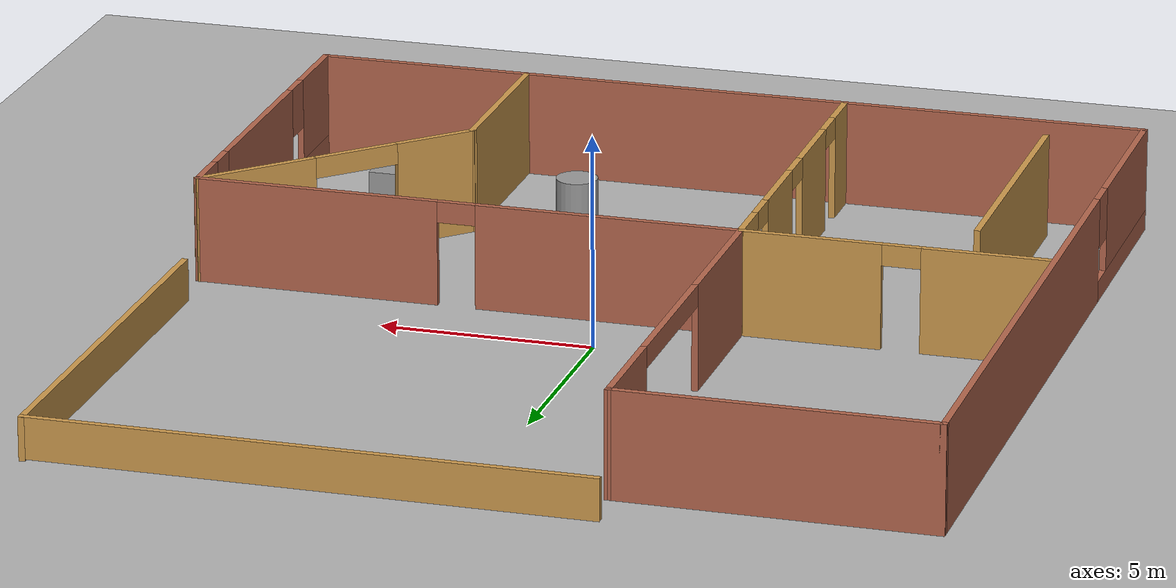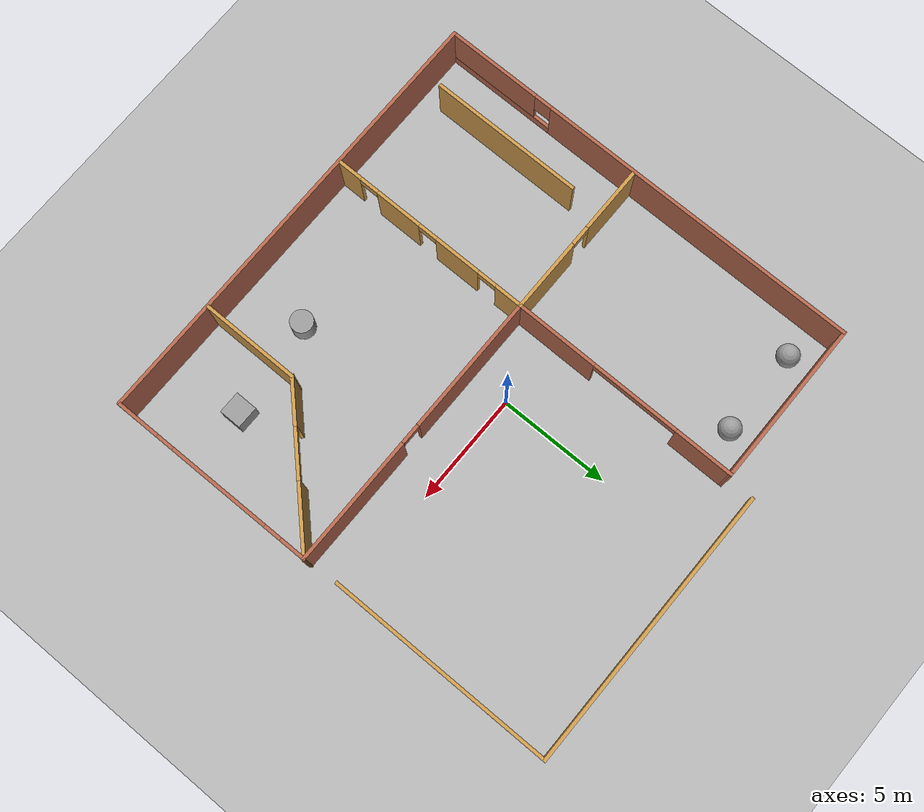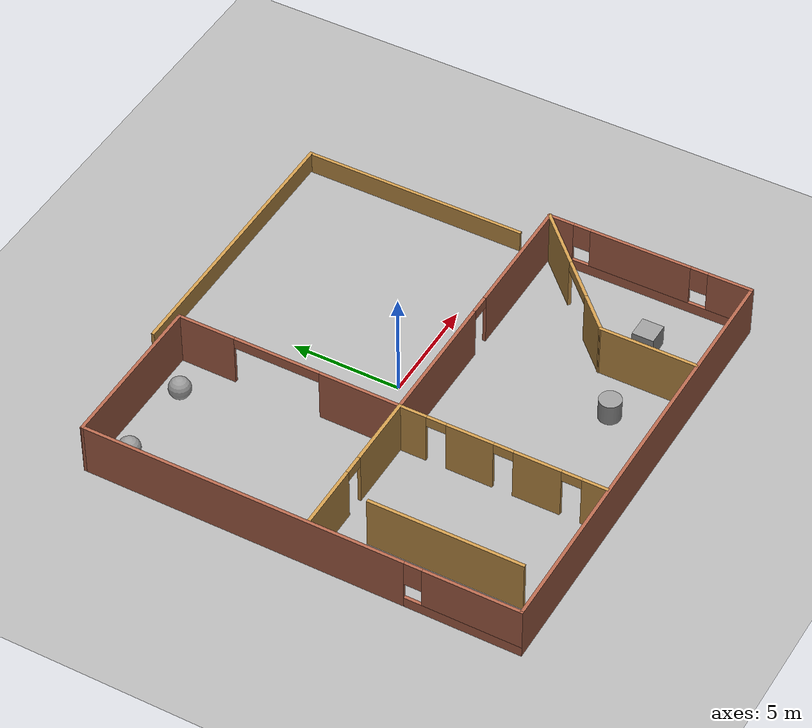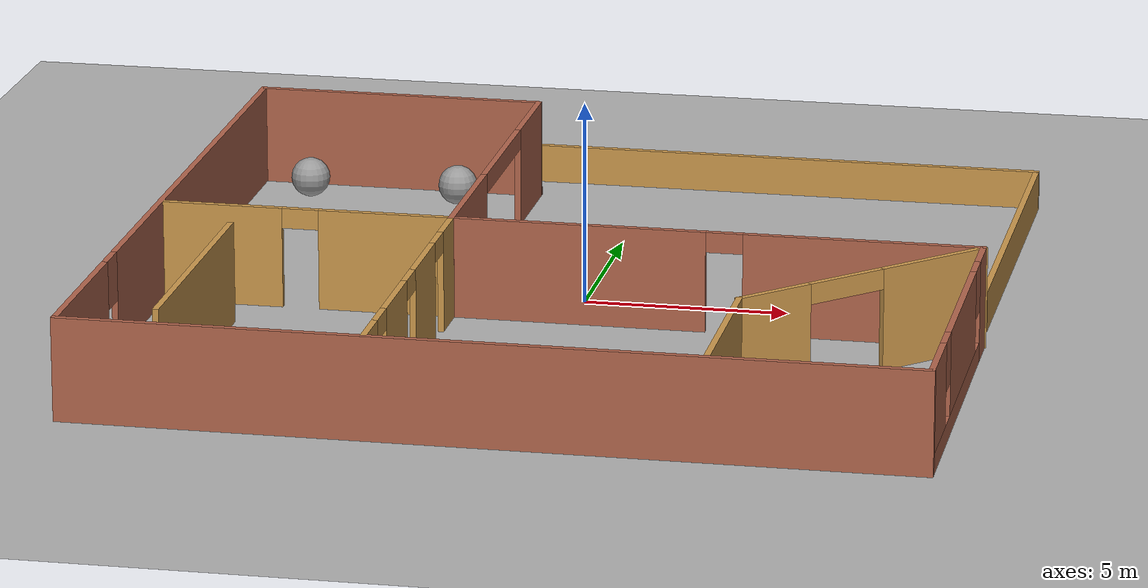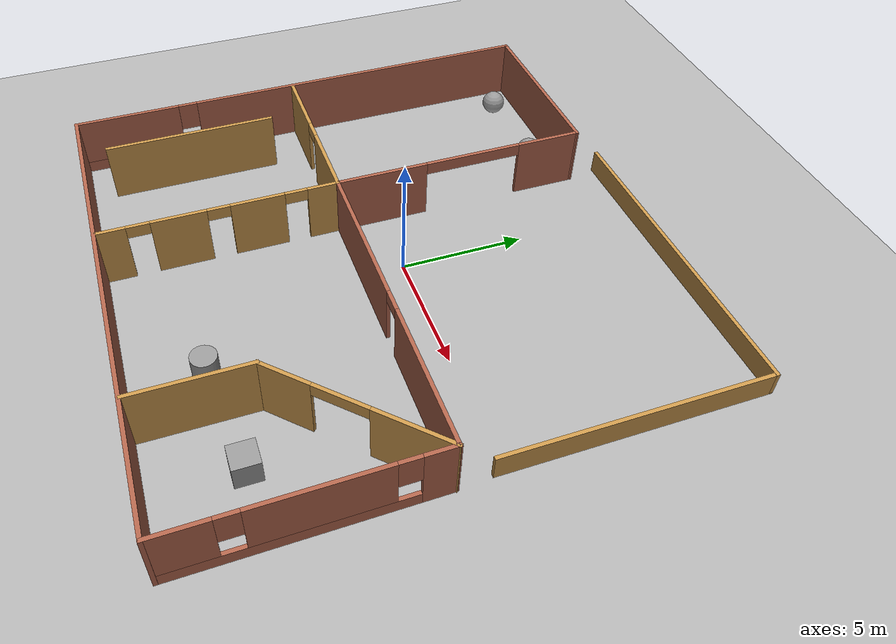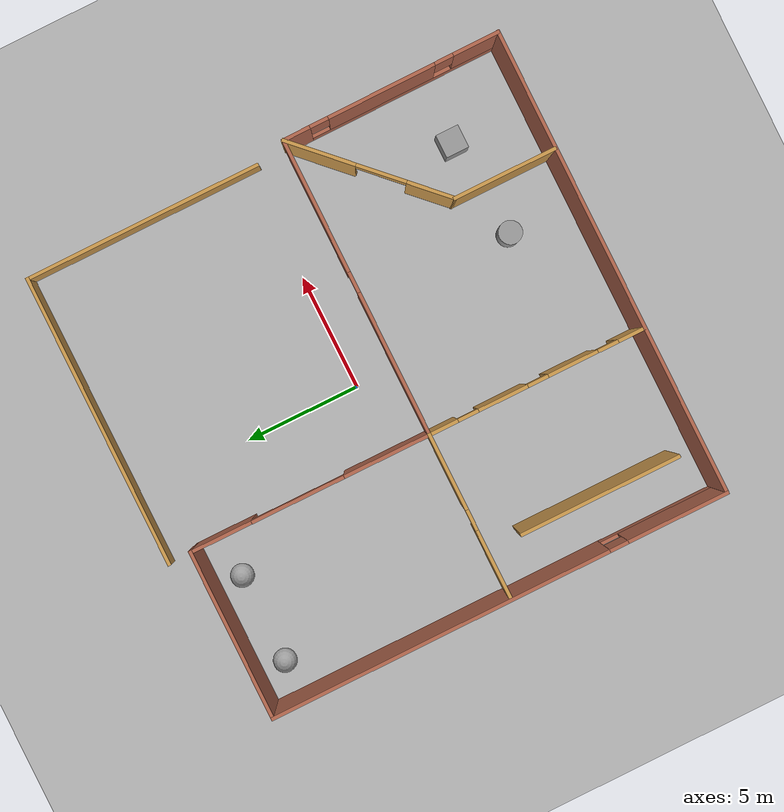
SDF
<sdf version='1.10'>
  <world name='default'>
    <light name='sun' type='directional'>
      <cast_shadows>1</cast_shadows>
      <pose>0 0 10 0 -0 0</pose>
      <diffuse>0.8 0.8 0.8 1</diffuse>
      <specular>0.2 0.2 0.2 1</specular>
      <attenuation>
        <range>1000</range>
        <constant>0.9</constant>
        <linear>0.01</linear>
        <quadratic>0.001</quadratic>
      </attenuation>
      <direction>-0.5 0.1 -0.9</direction>
      <spot>
        <inner_angle>0</inner_angle>
        <outer_angle>0</outer_angle>
        <falloff>0</falloff>
      </spot>
    </light>
    <model name='ground_plane'>
      <static>1</static>
      <link name='link'>
        <collision name='collision'>
          <geometry>
            <plane>
              <normal>0 0 1</normal>
              <size>100 100</size>
            </plane>
          </geometry>
          <surface>
            <friction>
              <ode>
                <mu>100</mu>
                <mu2>50</mu2>
              </ode>
              <torsional>
                <ode/>
              </torsional>
            </friction>
            <contact>
              <ode/>
            </contact>
            <bounce/>
          </surface>
          <max_contacts>10</max_contacts>
        </collision>
        <visual name='visual'>
          <cast_shadows>0</cast_shadows>
          <geometry>
            <plane>
              <normal>0 0 1</normal>
              <size>100 100</size>
            </plane>
          </geometry>
          <material>
            <ambient>0.4 0.4 0.4 1</ambient>
            <diffuse>0.7 0.7 0.7 1</diffuse>
            <specular>0.2 0.2 0.2 1</specular>
          </material>
        </visual>
        <self_collide>0</self_collide>
        <enable_wind>0</enable_wind>
        <kinematic>0</kinematic>
      </link>
    </model>
    <gravity>0 0 -9.8</gravity>
    <magnetic_field>6e-06 2.3e-05 -4.2e-05</magnetic_field>
    <atmosphere type='adiabatic'/>
    <physics name='1ms' type='ignored'>
      <max_step_size>0.001</max_step_size>
      <real_time_factor>1</real_time_factor>
    </physics>
    <plugin filename='gz-sim-physics-system' name='gz::sim::systems::Physics'/>
    <plugin filename='gz-sim-user-commands-system' name='gz::sim::systems::UserCommands'/>
    <plugin filename='gz-sim-scene-broadcaster-system' name='gz::sim::systems::SceneBroadcaster'/>
    <plugin filename='gz-sim-sensors-system' name='gz::sim::systems::Sensors'>
      <render_engine>ogre2</render_engine>
    </plugin>
    <plugin filename='gz-sim-imu-system' name='gz::sim::systems::Imu'/>
    <plugin filename='gz-sim-contact-system' name='gz::sim::systems::Contact'/>
    <scene>
      <ambient>0.4 0.4 0.4 1</ambient>
      <background>0.7 0.7 0.7 1</background>
      <shadows>1</shadows>
    </scene>
    <wind/>
    <spherical_coordinates>
      <surface_model>EARTH_WGS84</surface_model>
      <latitude_deg>0</latitude_deg>
      <longitude_deg>0</longitude_deg>
      <elevation>0</elevation>
      <heading_deg>0</heading_deg>
    </spherical_coordinates>
    <model name='test_room'>
      <pose>-0.077849 -1.23126 0 0 -0 0</pose>
      <link name='Wall_1'>
        <pose>-10.0852 -7e-06 0 0 -0 -1.5708</pose>
        <visual name='Wall_1_Visual_0'>
          <pose>-2.60084 0 1.25 0 -0 0</pose>
          <geometry>
            <box>
              <size>14.8266 0.15 2.5</size>
            </box>
          </geometry>
          <material>
            <ambient>0.35 0.2 0.15 1</ambient>
            <diffuse>0.7 0.4 0.3 1</diffuse>
            <specular>0.1 0.1 0.1 1</specular>
            <ambient>1 1 1 1</ambient>
          </material>
          <meta>
            <layer>0</layer>
          </meta>
        </visual>
        <collision name='Wall_1_Collision_0'>
          <geometry>
            <box>
              <size>14.8266 0.15 2.5</size>
            </box>
          </geometry>
          <pose>-2.60084 0 1.25 0 -0 0</pose>
          <max_contacts>10</max_contacts>
          <surface>
            <contact>
              <ode/>
            </contact>
            <bounce/>
            <friction>
              <torsional>
                <ode/>
              </torsional>
              <ode/>
            </friction>
          </surface>
        </collision>
        <visual name='Wall_1_Visual_1'>
          <pose>7.41331 0 0.25 0 -0 0</pose>
          <geometry>
            <box>
              <size>5.20167 0.15 0.5</size>
            </box>
          </geometry>
          <material>
            <ambient>0.35 0.2 0.15 1</ambient>
            <diffuse>0.7 0.4 0.3 1</diffuse>
            <specular>0.1 0.1 0.1 1</specular>
            <ambient>1 1 1 1</ambient>
          </material>
          <meta>
            <layer>0</layer>
          </meta>
        </visual>
        <collision name='Wall_1_Collision_1'>
          <geometry>
            <box>
              <size>5.20167 0.15 0.5</size>
            </box>
          </geometry>
          <pose>7.41331 0 0.25 0 -0 0</pose>
          <max_contacts>10</max_contacts>
          <surface>
            <contact>
              <ode/>
            </contact>
            <bounce/>
            <friction>
              <torsional>
                <ode/>
              </torsional>
              <ode/>
            </friction>
          </surface>
        </collision>
        <visual name='Wall_1_Visual_2'>
          <pose>7.81331 0 1.5 0 -0 0</pose>
          <geometry>
            <box>
              <size>4.40167 0.15 2</size>
            </box>
          </geometry>
          <material>
            <ambient>0.35 0.2 0.15 1</ambient>
            <diffuse>0.7 0.4 0.3 1</diffuse>
            <specular>0.1 0.1 0.1 1</specular>
            <ambient>1 1 1 1</ambient>
          </material>
          <meta>
            <layer>0</layer>
          </meta>
        </visual>
        <collision name='Wall_1_Collision_2'>
          <geometry>
            <box>
              <size>4.40167 0.15 2</size>
            </box>
          </geometry>
          <pose>7.81331 0 1.5 0 -0 0</pose>
          <max_contacts>10</max_contacts>
          <surface>
            <contact>
              <ode/>
            </contact>
            <bounce/>
            <friction>
              <torsional>
                <ode/>
              </torsional>
              <ode/>
            </friction>
          </surface>
        </collision>
        <visual name='Wall_1_Visual_3'>
          <pose>5.21248 0 1.9 0 -0 0</pose>
          <geometry>
            <box>
              <size>0.8 0.15 1.2</size>
            </box>
          </geometry>
          <material>
            <ambient>0.35 0.2 0.15 1</ambient>
            <diffuse>0.7 0.4 0.3 1</diffuse>
            <specular>0.1 0.1 0.1 1</specular>
            <ambient>1 1 1 1</ambient>
          </material>
          <meta>
            <layer>0</layer>
          </meta>
        </visual>
        <collision name='Wall_1_Collision_3'>
          <geometry>
            <box>
              <size>0.8 0.15 1.2</size>
            </box>
          </geometry>
          <pose>5.21248 0 1.9 0 -0 0</pose>
          <max_contacts>10</max_contacts>
          <surface>
            <contact>
              <ode/>
            </contact>
            <bounce/>
            <friction>
              <torsional>
                <ode/>
              </torsional>
              <ode/>
            </friction>
          </surface>
        </collision>
        <self_collide>0</self_collide>
        <enable_wind>0</enable_wind>
        <kinematic>0</kinematic>
      </link>
      <link name='Wall_10'>
        <pose>10.0526 -5.21899 0 0 -0 -1.56433</pose>
        <visual name='Wall_10_Visual_0'>
          <pose>-4.1681 0 1.25 0 -0 0</pose>
          <geometry>
            <box>
              <size>1.23337 0.15 2.5</size>
            </box>
          </geometry>
          <material>
            <ambient>0.35 0.2 0.15 1</ambient>
            <diffuse>0.7 0.4 0.3 1</diffuse>
            <specular>0.1 0.1 0.1 1</specular>
            <ambient>1 1 1 1</ambient>
          </material>
          <meta>
            <layer>0</layer>
          </meta>
        </visual>
        <collision name='Wall_10_Collision_0'>
          <geometry>
            <box>
              <size>1.23337 0.15 2.5</size>
            </box>
          </geometry>
          <pose>-4.1681 0 1.25 0 -0 0</pose>
          <max_contacts>10</max_contacts>
          <surface>
            <contact>
              <ode/>
            </contact>
            <bounce/>
            <friction>
              <torsional>
                <ode/>
              </torsional>
              <ode/>
            </friction>
          </surface>
        </collision>
        <visual name='Wall_10_Visual_1'>
          <pose>0.616686 0 0.25 0 -0 0</pose>
          <geometry>
            <box>
              <size>8.3362 0.15 0.5</size>
            </box>
          </geometry>
          <material>
            <ambient>0.35 0.2 0.15 1</ambient>
            <diffuse>0.7 0.4 0.3 1</diffuse>
            <specular>0.1 0.1 0.1 1</specular>
            <ambient>1 1 1 1</ambient>
          </material>
          <meta>
            <layer>0</layer>
          </meta>
        </visual>
        <collision name='Wall_10_Collision_1'>
          <geometry>
            <box>
              <size>8.3362 0.15 0.5</size>
            </box>
          </geometry>
          <pose>0.616686 0 0.25 0 -0 0</pose>
          <max_contacts>10</max_contacts>
          <surface>
            <contact>
              <ode/>
            </contact>
            <bounce/>
            <friction>
              <torsional>
                <ode/>
              </torsional>
              <ode/>
            </friction>
          </surface>
        </collision>
        <visual name='Wall_10_Visual_2'>
          <pose>-0.410197 0 1.5 0 -0 0</pose>
          <geometry>
            <box>
              <size>4.68244 0.15 2</size>
            </box>
          </geometry>
          <material>
            <ambient>0.35 0.2 0.15 1</ambient>
            <diffuse>0.7 0.4 0.3 1</diffuse>
            <specular>0.1 0.1 0.1 1</specular>
            <ambient>1 1 1 1</ambient>
          </material>
          <meta>
            <layer>0</layer>
          </meta>
        </visual>
        <collision name='Wall_10_Collision_2'>
          <geometry>
            <box>
              <size>4.68244 0.15 2</size>
            </box>
          </geometry>
          <pose>-0.410197 0 1.5 0 -0 0</pose>
          <max_contacts>10</max_contacts>
          <surface>
            <contact>
              <ode/>
            </contact>
            <bounce/>
            <friction>
              <torsional>
                <ode/>
              </torsional>
              <ode/>
            </friction>
          </surface>
        </collision>
        <visual name='Wall_10_Visual_3'>
          <pose>3.75791 0 1.5 0 -0 0</pose>
          <geometry>
            <box>
              <size>2.05376 0.15 2</size>
            </box>
          </geometry>
          <material>
            <ambient>0.35 0.2 0.15 1</ambient>
            <diffuse>0.7 0.4 0.3 1</diffuse>
            <specular>0.1 0.1 0.1 1</specular>
            <ambient>1 1 1 1</ambient>
          </material>
          <meta>
            <layer>0</layer>
          </meta>
        </visual>
        <collision name='Wall_10_Collision_3'>
          <geometry>
            <box>
              <size>2.05376 0.15 2</size>
            </box>
          </geometry>
          <pose>3.75791 0 1.5 0 -0 0</pose>
          <max_contacts>10</max_contacts>
          <surface>
            <contact>
              <ode/>
            </contact>
            <bounce/>
            <friction>
              <torsional>
                <ode/>
              </torsional>
              <ode/>
            </friction>
          </surface>
        </collision>
        <visual name='Wall_10_Visual_4'>
          <pose>-3.15142 0 1.9 0 -0 0</pose>
          <geometry>
            <box>
              <size>0.8 0.15 1.2</size>
            </box>
          </geometry>
          <material>
            <ambient>0.35 0.2 0.15 1</ambient>
            <diffuse>0.7 0.4 0.3 1</diffuse>
            <specular>0.1 0.1 0.1 1</specular>
            <ambient>1 1 1 1</ambient>
          </material>
          <meta>
            <layer>0</layer>
          </meta>
        </visual>
        <collision name='Wall_10_Collision_4'>
          <geometry>
            <box>
              <size>0.8 0.15 1.2</size>
            </box>
          </geometry>
          <pose>-3.15142 0 1.9 0 -0 0</pose>
          <max_contacts>10</max_contacts>
          <surface>
            <contact>
              <ode/>
            </contact>
            <bounce/>
            <friction>
              <torsional>
                <ode/>
              </torsional>
              <ode/>
            </friction>
          </surface>
        </collision>
        <visual name='Wall_10_Visual_5'>
          <pose>2.33102 0 1.9 0 -0 0</pose>
          <geometry>
            <box>
              <size>0.8 0.15 1.2</size>
            </box>
          </geometry>
          <material>
            <ambient>0.35 0.2 0.15 1</ambient>
            <diffuse>0.7 0.4 0.3 1</diffuse>
            <specular>0.1 0.1 0.1 1</specular>
            <ambient>1 1 1 1</ambient>
          </material>
          <meta>
            <layer>0</layer>
          </meta>
        </visual>
        <collision name='Wall_10_Collision_5'>
          <geometry>
            <box>
              <size>0.8 0.15 1.2</size>
            </box>
          </geometry>
          <pose>2.33102 0 1.9 0 -0 0</pose>
          <max_contacts>10</max_contacts>
          <surface>
            <contact>
              <ode/>
            </contact>
            <bounce/>
            <friction>
              <torsional>
                <ode/>
              </torsional>
              <ode/>
            </friction>
          </surface>
        </collision>
        <self_collide>0</self_collide>
        <enable_wind>0</enable_wind>
        <kinematic>0</kinematic>
      </link>
      <link name='Wall_12'>
        <collision name='Wall_12_Collision'>
          <geometry>
            <box>
              <size>7.41264 0.15 2.5</size>
            </box>
          </geometry>
          <pose>0 0 1.25 0 -0 0</pose>
          <max_contacts>10</max_contacts>
          <surface>
            <contact>
              <ode/>
            </contact>
            <bounce/>
            <friction>
              <torsional>
                <ode/>
              </torsional>
              <ode/>
            </friction>
          </surface>
        </collision>
        <visual name='Wall_12_Visual'>
          <pose>0 0 1.25 0 -0 0</pose>
          <geometry>
            <box>
              <size>7.41264 0.15 2.5</size>
            </box>
          </geometry>
          <material>
            <ambient>0.35 0.2 0.15 1</ambient>
            <diffuse>0.7 0.4 0.3 1</diffuse>
            <specular>0.1 0.1 0.1 1</specular>
            <ambient>1 1 1 1</ambient>
          </material>
          <meta>
            <layer>0</layer>
          </meta>
        </visual>
        <pose>-6.45385 9.93841 0 0 -0 -0.000203</pose>
        <self_collide>0</self_collide>
        <enable_wind>0</enable_wind>
        <kinematic>0</kinematic>
      </link>
      <link name='Wall_16'>
        <pose>-6.41315 -0.507168 0 0 -0 3.14159</pose>
        <visual name='Wall_16_Visual_0'>
          <pose>-1.94676 0 1.25 0 -0 0</pose>
          <geometry>
            <box>
              <size>3.35648 0.15 2.5</size>
            </box>
          </geometry>
          <material>
            <ambient>0.4 0.3 0.15 1</ambient>
            <diffuse>0.8 0.6 0.3 1</diffuse>
            <specular>0.1 0.1 0.1 1</specular>
            <ambient>1 1 1 1</ambient>
          </material>
          <meta>
            <layer>0</layer>
          </meta>
        </visual>
        <collision name='Wall_16_Collision_0'>
          <geometry>
            <box>
              <size>3.35648 0.15 2.5</size>
            </box>
          </geometry>
          <pose>-1.94676 0 1.25 0 -0 0</pose>
          <max_contacts>10</max_contacts>
          <surface>
            <contact>
              <ode/>
            </contact>
            <bounce/>
            <friction>
              <torsional>
                <ode/>
              </torsional>
              <ode/>
            </friction>
          </surface>
        </collision>
        <visual name='Wall_16_Visual_1'>
          <pose>2.12824 0 1.25 0 -0 0</pose>
          <geometry>
            <box>
              <size>2.99352 0.15 2.5</size>
            </box>
          </geometry>
          <material>
            <ambient>0.4 0.3 0.15 1</ambient>
            <diffuse>0.8 0.6 0.3 1</diffuse>
            <specular>0.1 0.1 0.1 1</specular>
            <ambient>1 1 1 1</ambient>
          </material>
          <meta>
            <layer>0</layer>
          </meta>
        </visual>
        <collision name='Wall_16_Collision_1'>
          <geometry>
            <box>
              <size>2.99352 0.15 2.5</size>
            </box>
          </geometry>
          <pose>2.12824 0 1.25 0 -0 0</pose>
          <max_contacts>10</max_contacts>
          <surface>
            <contact>
              <ode/>
            </contact>
            <bounce/>
            <friction>
              <torsional>
                <ode/>
              </torsional>
              <ode/>
            </friction>
          </surface>
        </collision>
        <visual name='Wall_16_Visual_2'>
          <pose>0.181481 0 2.25 0 -0 0</pose>
          <geometry>
            <box>
              <size>0.9 0.15 0.5</size>
            </box>
          </geometry>
          <material>
            <ambient>0.4 0.3 0.15 1</ambient>
            <diffuse>0.8 0.6 0.3 1</diffuse>
            <specular>0.1 0.1 0.1 1</specular>
            <ambient>1 1 1 1</ambient>
          </material>
          <meta>
            <layer>0</layer>
          </meta>
        </visual>
        <collision name='Wall_16_Collision_2'>
          <geometry>
            <box>
              <size>0.9 0.15 0.5</size>
            </box>
          </geometry>
          <pose>0.181481 0 2.25 0 -0 0</pose>
          <max_contacts>10</max_contacts>
          <surface>
            <contact>
              <ode/>
            </contact>
            <bounce/>
            <friction>
              <torsional>
                <ode/>
              </torsional>
              <ode/>
            </friction>
          </surface>
        </collision>
        <self_collide>0</self_collide>
        <enable_wind>0</enable_wind>
        <kinematic>0</kinematic>
      </link>
      <link name='Wall_18'>
        <pose>-2.86315 -5.18217 0 0 -0 -1.5708</pose>
        <visual name='Wall_18_Visual_0'>
          <pose>-4.08833 0 1.25 0 -0 0</pose>
          <geometry>
            <box>
              <size>1.32334 0.15 2.5</size>
            </box>
          </geometry>
          <material>
            <ambient>0.4 0.3 0.15 1</ambient>
            <diffuse>0.8 0.6 0.3 1</diffuse>
            <specular>0.1 0.1 0.1 1</specular>
            <ambient>1 1 1 1</ambient>
          </material>
          <meta>
            <layer>0</layer>
          </meta>
        </visual>
        <collision name='Wall_18_Collision_0'>
          <geometry>
            <box>
              <size>1.32334 0.15 2.5</size>
            </box>
          </geometry>
          <pose>-4.08833 0 1.25 0 -0 0</pose>
          <max_contacts>10</max_contacts>
          <surface>
            <contact>
              <ode/>
            </contact>
            <bounce/>
            <friction>
              <torsional>
                <ode/>
              </torsional>
              <ode/>
            </friction>
          </surface>
        </collision>
        <visual name='Wall_18_Visual_1'>
          <pose>-1.45004 0 1.25 0 -0 0</pose>
          <geometry>
            <box>
              <size>2.15324 0.15 2.5</size>
            </box>
          </geometry>
          <material>
            <ambient>0.4 0.3 0.15 1</ambient>
            <diffuse>0.8 0.6 0.3 1</diffuse>
            <specular>0.1 0.1 0.1 1</specular>
            <ambient>1 1 1 1</ambient>
          </material>
          <meta>
            <layer>0</layer>
          </meta>
        </visual>
        <collision name='Wall_18_Collision_1'>
          <geometry>
            <box>
              <size>2.15324 0.15 2.5</size>
            </box>
          </geometry>
          <pose>-1.45004 0 1.25 0 -0 0</pose>
          <max_contacts>10</max_contacts>
          <surface>
            <contact>
              <ode/>
            </contact>
            <bounce/>
            <friction>
              <torsional>
                <ode/>
              </torsional>
              <ode/>
            </friction>
          </surface>
        </collision>
        <visual name='Wall_18_Visual_2'>
          <pose>1.60632 0 1.25 0 -0 0</pose>
          <geometry>
            <box>
              <size>2.15948 0.15 2.5</size>
            </box>
          </geometry>
          <material>
            <ambient>0.4 0.3 0.15 1</ambient>
            <diffuse>0.8 0.6 0.3 1</diffuse>
            <specular>0.1 0.1 0.1 1</specular>
            <ambient>1 1 1 1</ambient>
          </material>
          <meta>
            <layer>0</layer>
          </meta>
        </visual>
        <collision name='Wall_18_Collision_2'>
          <geometry>
            <box>
              <size>2.15948 0.15 2.5</size>
            </box>
          </geometry>
          <pose>1.60632 0 1.25 0 -0 0</pose>
          <max_contacts>10</max_contacts>
          <surface>
            <contact>
              <ode/>
            </contact>
            <bounce/>
            <friction>
              <torsional>
                <ode/>
              </torsional>
              <ode/>
            </friction>
          </surface>
        </collision>
        <visual name='Wall_18_Visual_3'>
          <pose>4.16803 0 1.25 0 -0 0</pose>
          <geometry>
            <box>
              <size>1.16395 0.15 2.5</size>
            </box>
          </geometry>
          <material>
            <ambient>0.4 0.3 0.15 1</ambient>
            <diffuse>0.8 0.6 0.3 1</diffuse>
            <specular>0.1 0.1 0.1 1</specular>
            <ambient>1 1 1 1</ambient>
          </material>
          <meta>
            <layer>0</layer>
          </meta>
        </visual>
        <collision name='Wall_18_Collision_3'>
          <geometry>
            <box>
              <size>1.16395 0.15 2.5</size>
            </box>
          </geometry>
          <pose>4.16803 0 1.25 0 -0 0</pose>
          <max_contacts>10</max_contacts>
          <surface>
            <contact>
              <ode/>
            </contact>
            <bounce/>
            <friction>
              <torsional>
                <ode/>
              </torsional>
              <ode/>
            </friction>
          </surface>
        </collision>
        <visual name='Wall_18_Visual_4'>
          <pose>-2.97666 0 2.25 0 -0 0</pose>
          <geometry>
            <box>
              <size>0.9 0.15 0.5</size>
            </box>
          </geometry>
          <material>
            <ambient>0.4 0.3 0.15 1</ambient>
            <diffuse>0.8 0.6 0.3 1</diffuse>
            <specular>0.1 0.1 0.1 1</specular>
            <ambient>1 1 1 1</ambient>
          </material>
          <meta>
            <layer>0</layer>
          </meta>
        </visual>
        <collision name='Wall_18_Collision_4'>
          <geometry>
            <box>
              <size>0.9 0.15 0.5</size>
            </box>
          </geometry>
          <pose>-2.97666 0 2.25 0 -0 0</pose>
          <max_contacts>10</max_contacts>
          <surface>
            <contact>
              <ode/>
            </contact>
            <bounce/>
            <friction>
              <torsional>
                <ode/>
              </torsional>
              <ode/>
            </friction>
          </surface>
        </collision>
        <visual name='Wall_18_Visual_5'>
          <pose>0.076577 0 2.25 0 -0 0</pose>
          <geometry>
            <box>
              <size>0.9 0.15 0.5</size>
            </box>
          </geometry>
          <material>
            <ambient>0.4 0.3 0.15 1</ambient>
            <diffuse>0.8 0.6 0.3 1</diffuse>
            <specular>0.1 0.1 0.1 1</specular>
            <ambient>1 1 1 1</ambient>
          </material>
          <meta>
            <layer>0</layer>
          </meta>
        </visual>
        <collision name='Wall_18_Collision_5'>
          <geometry>
            <box>
              <size>0.9 0.15 0.5</size>
            </box>
          </geometry>
          <pose>0.076577 0 2.25 0 -0 0</pose>
          <max_contacts>10</max_contacts>
          <surface>
            <contact>
              <ode/>
            </contact>
            <bounce/>
            <friction>
              <torsional>
                <ode/>
              </torsional>
              <ode/>
            </friction>
          </surface>
        </collision>
        <visual name='Wall_18_Visual_6'>
          <pose>3.13605 0 2.25 0 -0 0</pose>
          <geometry>
            <box>
              <size>0.9 0.15 0.5</size>
            </box>
          </geometry>
          <material>
            <ambient>0.4 0.3 0.15 1</ambient>
            <diffuse>0.8 0.6 0.3 1</diffuse>
            <specular>0.1 0.1 0.1 1</specular>
            <ambient>1 1 1 1</ambient>
          </material>
          <meta>
            <layer>0</layer>
          </meta>
        </visual>
        <collision name='Wall_18_Collision_6'>
          <geometry>
            <box>
              <size>0.9 0.15 0.5</size>
            </box>
          </geometry>
          <pose>3.13605 0 2.25 0 -0 0</pose>
          <max_contacts>10</max_contacts>
          <surface>
            <contact>
              <ode/>
            </contact>
            <bounce/>
            <friction>
              <torsional>
                <ode/>
              </torsional>
              <ode/>
            </friction>
          </surface>
        </collision>
        <self_collide>0</self_collide>
        <enable_wind>0</enable_wind>
        <kinematic>0</kinematic>
      </link>
      <link name='Wall_20'>
        <collision name='Wall_20_Collision'>
          <geometry>
            <box>
              <size>7 0.15 2.5</size>
            </box>
          </geometry>
          <pose>0 0 1.25 0 -0 0</pose>
          <max_contacts>10</max_contacts>
          <surface>
            <contact>
              <ode/>
            </contact>
            <bounce/>
            <friction>
              <torsional>
                <ode/>
              </torsional>
              <ode/>
            </friction>
          </surface>
        </collision>
        <visual name='Wall_20_Visual'>
          <pose>0 0 1.25 0 -0 0</pose>
          <geometry>
            <box>
              <size>7 0.15 2.5</size>
            </box>
          </geometry>
          <material>
            <ambient>0.4 0.3 0.15 1</ambient>
            <diffuse>0.8 0.6 0.3 1</diffuse>
            <specular>0.1 0.1 0.1 1</specular>
            <ambient>1 1 1 1</ambient>
          </material>
          <meta>
            <layer>0</layer>
          </meta>
        </visual>
        <pose>-7.96917 -5.44423 0 0 -0 -1.5708</pose>
        <self_collide>0</self_collide>
        <enable_wind>0</enable_wind>
        <kinematic>0</kinematic>
      </link>
      <link name='Wall_22'>
        <pose>7.51188 -3.01953 0 0 -0 -2.35619</pose>
        <visual name='Wall_22_Visual_0'>
          <pose>-2.09265 0 1.25 0 -0 0</pose>
          <geometry>
            <box>
              <size>3.06471 0.15 2.5</size>
            </box>
          </geometry>
          <material>
            <ambient>0.4 0.3 0.15 1</ambient>
            <diffuse>0.8 0.6 0.3 1</diffuse>
            <specular>0.1 0.1 0.1 1</specular>
            <ambient>1 1 1 1</ambient>
          </material>
          <meta>
            <layer>0</layer>
          </meta>
        </visual>
        <collision name='Wall_22_Collision_0'>
          <geometry>
            <box>
              <size>3.06471 0.15 2.5</size>
            </box>
          </geometry>
          <pose>-2.09265 0 1.25 0 -0 0</pose>
          <max_contacts>10</max_contacts>
          <surface>
            <contact>
              <ode/>
            </contact>
            <bounce/>
            <friction>
              <torsional>
                <ode/>
              </torsional>
              <ode/>
            </friction>
          </surface>
        </collision>
        <visual name='Wall_22_Visual_1'>
          <pose>2.58752 0 1.25 0 -0 0</pose>
          <geometry>
            <box>
              <size>2.07496 0.15 2.5</size>
            </box>
          </geometry>
          <material>
            <ambient>0.4 0.3 0.15 1</ambient>
            <diffuse>0.8 0.6 0.3 1</diffuse>
            <specular>0.1 0.1 0.1 1</specular>
            <ambient>1 1 1 1</ambient>
          </material>
          <meta>
            <layer>0</layer>
          </meta>
        </visual>
        <collision name='Wall_22_Collision_1'>
          <geometry>
            <box>
              <size>2.07496 0.15 2.5</size>
            </box>
          </geometry>
          <pose>2.58752 0 1.25 0 -0 0</pose>
          <max_contacts>10</max_contacts>
          <surface>
            <contact>
              <ode/>
            </contact>
            <bounce/>
            <friction>
              <torsional>
                <ode/>
              </torsional>
              <ode/>
            </friction>
          </surface>
        </collision>
        <visual name='Wall_22_Visual_2'>
          <pose>0.494874 0 2.25 0 -0 0</pose>
          <geometry>
            <box>
              <size>2.11033 0.15 0.5</size>
            </box>
          </geometry>
          <material>
            <ambient>0.4 0.3 0.15 1</ambient>
            <diffuse>0.8 0.6 0.3 1</diffuse>
            <specular>0.1 0.1 0.1 1</specular>
            <ambient>1 1 1 1</ambient>
          </material>
          <meta>
            <layer>0</layer>
          </meta>
        </visual>
        <collision name='Wall_22_Collision_2'>
          <geometry>
            <box>
              <size>2.11033 0.15 0.5</size>
            </box>
          </geometry>
          <pose>0.494874 0 2.25 0 -0 0</pose>
          <max_contacts>10</max_contacts>
          <surface>
            <contact>
              <ode/>
            </contact>
            <bounce/>
            <friction>
              <torsional>
                <ode/>
              </torsional>
              <ode/>
            </friction>
          </surface>
        </collision>
        <self_collide>0</self_collide>
        <enable_wind>0</enable_wind>
        <kinematic>0</kinematic>
      </link>
      <link name='Wall_23'>
        <collision name='Wall_23_Collision'>
          <geometry>
            <box>
              <size>4.5 0.15 2.5</size>
            </box>
          </geometry>
          <pose>0 0 1.25 0 -0 0</pose>
          <max_contacts>10</max_contacts>
          <surface>
            <contact>
              <ode/>
            </contact>
            <bounce/>
            <friction>
              <torsional>
                <ode/>
              </torsional>
              <ode/>
            </friction>
          </surface>
        </collision>
        <visual name='Wall_23_Visual'>
          <pose>0 0 1.25 0 -0 0</pose>
          <geometry>
            <box>
              <size>4.5 0.15 2.5</size>
            </box>
          </geometry>
          <material>
            <ambient>0.4 0.3 0.15 1</ambient>
            <diffuse>0.8 0.6 0.3 1</diffuse>
            <specular>0.1 0.1 0.1 1</specular>
            <ambient>1 1 1 1</ambient>
          </material>
          <meta>
            <layer>0</layer>
          </meta>
        </visual>
        <pose>5.00165 -7.70476 0 0 -0 -1.5708</pose>
        <self_collide>0</self_collide>
        <enable_wind>0</enable_wind>
        <kinematic>0</kinematic>
      </link>
      <link name='Wall_3'>
        <collision name='Wall_3_Collision'>
          <geometry>
            <box>
              <size>20.3204 0.15 2.5</size>
            </box>
          </geometry>
          <pose>0 0 1.25 0 -0 0</pose>
          <max_contacts>10</max_contacts>
          <surface>
            <contact>
              <ode/>
            </contact>
            <bounce/>
            <friction>
              <torsional>
                <ode/>
              </torsional>
              <ode/>
            </friction>
          </surface>
        </collision>
        <visual name='Wall_3_Visual'>
          <pose>0 0 1.25 0 -0 0</pose>
          <geometry>
            <box>
              <size>20.3204 0.15 2.5</size>
            </box>
          </geometry>
          <material>
            <ambient>0.35 0.2 0.15 1</ambient>
            <diffuse>0.7 0.4 0.3 1</diffuse>
            <specular>0.1 0.1 0.1 1</specular>
            <ambient>1 1 1 1</ambient>
          </material>
          <meta>
            <layer>0</layer>
          </meta>
        </visual>
        <pose>8e-06 -9.93916 0 0 -0 0</pose>
        <self_collide>0</self_collide>
        <enable_wind>0</enable_wind>
        <kinematic>0</kinematic>
      </link>
      <link name='Wall_7'>
        <pose>-2.84231 4.71525 0 0 -0 -1.57458</pose>
        <visual name='Wall_7_Visual_0'>
          <pose>-3.92845 0 1.25 0 -0 0</pose>
          <geometry>
            <box>
              <size>2.73806 0.15 2.5</size>
            </box>
          </geometry>
          <material>
            <ambient>0.35 0.2 0.15 1</ambient>
            <diffuse>0.7 0.4 0.3 1</diffuse>
            <specular>0.1 0.1 0.1 1</specular>
            <ambient>1 1 1 1</ambient>
          </material>
          <meta>
            <layer>0</layer>
          </meta>
        </visual>
        <collision name='Wall_7_Collision_0'>
          <geometry>
            <box>
              <size>2.73806 0.15 2.5</size>
            </box>
          </geometry>
          <pose>-3.92845 0 1.25 0 -0 0</pose>
          <max_contacts>10</max_contacts>
          <surface>
            <contact>
              <ode/>
            </contact>
            <bounce/>
            <friction>
              <torsional>
                <ode/>
              </torsional>
              <ode/>
            </friction>
          </surface>
        </collision>
        <visual name='Wall_7_Visual_1'>
          <pose>3.38844 0 1.25 0 -0 0</pose>
          <geometry>
            <box>
              <size>3.81807 0.15 2.5</size>
            </box>
          </geometry>
          <material>
            <ambient>0.35 0.2 0.15 1</ambient>
            <diffuse>0.7 0.4 0.3 1</diffuse>
            <specular>0.1 0.1 0.1 1</specular>
            <ambient>1 1 1 1</ambient>
          </material>
          <meta>
            <layer>0</layer>
          </meta>
        </visual>
        <collision name='Wall_7_Collision_1'>
          <geometry>
            <box>
              <size>3.81807 0.15 2.5</size>
            </box>
          </geometry>
          <pose>3.38844 0 1.25 0 -0 0</pose>
          <max_contacts>10</max_contacts>
          <surface>
            <contact>
              <ode/>
            </contact>
            <bounce/>
            <friction>
              <torsional>
                <ode/>
              </torsional>
              <ode/>
            </friction>
          </surface>
        </collision>
        <visual name='Wall_7_Visual_2'>
          <pose>-0.540004 0 2.25 0 -0 0</pose>
          <geometry>
            <box>
              <size>4.03882 0.15 0.5</size>
            </box>
          </geometry>
          <material>
            <ambient>0.35 0.2 0.15 1</ambient>
            <diffuse>0.7 0.4 0.3 1</diffuse>
            <specular>0.1 0.1 0.1 1</specular>
            <ambient>1 1 1 1</ambient>
          </material>
          <meta>
            <layer>0</layer>
          </meta>
        </visual>
        <collision name='Wall_7_Collision_2'>
          <geometry>
            <box>
              <size>4.03882 0.15 0.5</size>
            </box>
          </geometry>
          <pose>-0.540004 0 2.25 0 -0 0</pose>
          <max_contacts>10</max_contacts>
          <surface>
            <contact>
              <ode/>
            </contact>
            <bounce/>
            <friction>
              <torsional>
                <ode/>
              </torsional>
              <ode/>
            </friction>
          </surface>
        </collision>
        <self_collide>0</self_collide>
        <enable_wind>0</enable_wind>
        <kinematic>0</kinematic>
      </link>
      <link name='Wall_8'>
        <pose>3.58001 -0.508237 0 0 -0 -0.000166</pose>
        <visual name='Wall_8_Visual_0'>
          <pose>-3.36964 0 1.25 0 -0 0</pose>
          <geometry>
            <box>
              <size>6.29492 0.15 2.5</size>
            </box>
          </geometry>
          <material>
            <ambient>0.35 0.2 0.15 1</ambient>
            <diffuse>0.7 0.4 0.3 1</diffuse>
            <specular>0.1 0.1 0.1 1</specular>
            <ambient>1 1 1 1</ambient>
          </material>
          <meta>
            <layer>0</layer>
          </meta>
        </visual>
        <collision name='Wall_8_Collision_0'>
          <geometry>
            <box>
              <size>6.29492 0.15 2.5</size>
            </box>
          </geometry>
          <pose>-3.36964 0 1.25 0 -0 0</pose>
          <max_contacts>10</max_contacts>
          <surface>
            <contact>
              <ode/>
            </contact>
            <bounce/>
            <friction>
              <torsional>
                <ode/>
              </torsional>
              <ode/>
            </friction>
          </surface>
        </collision>
        <visual name='Wall_8_Visual_1'>
          <pose>3.59746 0 1.25 0 -0 0</pose>
          <geometry>
            <box>
              <size>5.83927 0.15 2.5</size>
            </box>
          </geometry>
          <material>
            <ambient>0.35 0.2 0.15 1</ambient>
            <diffuse>0.7 0.4 0.3 1</diffuse>
            <specular>0.1 0.1 0.1 1</specular>
            <ambient>1 1 1 1</ambient>
          </material>
          <meta>
            <layer>0</layer>
          </meta>
        </visual>
        <collision name='Wall_8_Collision_1'>
          <geometry>
            <box>
              <size>5.83927 0.15 2.5</size>
            </box>
          </geometry>
          <pose>3.59746 0 1.25 0 -0 0</pose>
          <max_contacts>10</max_contacts>
          <surface>
            <contact>
              <ode/>
            </contact>
            <bounce/>
            <friction>
              <torsional>
                <ode/>
              </torsional>
              <ode/>
            </friction>
          </surface>
        </collision>
        <visual name='Wall_8_Visual_2'>
          <pose>0.227824 0 2.25 0 -0 0</pose>
          <geometry>
            <box>
              <size>0.9 0.15 0.5</size>
            </box>
          </geometry>
          <material>
            <ambient>0.35 0.2 0.15 1</ambient>
            <diffuse>0.7 0.4 0.3 1</diffuse>
            <specular>0.1 0.1 0.1 1</specular>
            <ambient>1 1 1 1</ambient>
          </material>
          <meta>
            <layer>0</layer>
          </meta>
        </visual>
        <collision name='Wall_8_Collision_2'>
          <geometry>
            <box>
              <size>0.9 0.15 0.5</size>
            </box>
          </geometry>
          <pose>0.227824 0 2.25 0 -0 0</pose>
          <max_contacts>10</max_contacts>
          <surface>
            <contact>
              <ode/>
            </contact>
            <bounce/>
            <friction>
              <torsional>
                <ode/>
              </torsional>
              <ode/>
            </friction>
          </surface>
        </collision>
        <self_collide>0</self_collide>
        <enable_wind>0</enable_wind>
        <kinematic>0</kinematic>
      </link>
      <static>1</static>
    </model>
    <model name='wooden_fence'>
      <link name='Wall_14'>
        <pose>6.425 0 -0.775596 0 -0 1.5708</pose>
        <self_collide>0</self_collide>
        <enable_wind>0</enable_wind>
        <kinematic>0</kinematic>
        <inertial>
          <inertia>
            <ixx>0</ixx>
            <ixy>0</ixy>
            <ixz>0</ixz>
            <iyy>0</iyy>
            <iyz>0</iyz>
            <izz>0</izz>
          </inertia>
          <mass>0</mass>
          <pose>0 0 0 0 -0 0</pose>
        </inertial>
        <visual name='Wall_14_Visual'>
          <pose>0 0 1.25 0 -0 0</pose>
          <geometry>
            <box>
              <size>10.5 0.15 1.0201</size>
            </box>
          </geometry>
          <material>
            <ambient>0.4 0.3 0.15 1</ambient>
            <diffuse>0.8 0.6 0.3 1</diffuse>
            <specular>0.1 0.1 0.1 1</specular>
            <ambient>1 1 1 1</ambient>
            <shader type='pixel'/>
          </material>
          <meta>
            <layer>0</layer>
          </meta>
          <transparency>0</transparency>
          <cast_shadows>1</cast_shadows>
        </visual>
        <collision name='Wall_14_Collision'>
          <laser_retro>0</laser_retro>
          <max_contacts>10</max_contacts>
          <pose>0 0 1.25 0 -0 0</pose>
          <geometry>
            <box>
              <size>10.5 0.15 1.0201</size>
            </box>
          </geometry>
          <surface>
            <friction>
              <ode>
                <mu>1</mu>
                <mu2>1</mu2>
                <fdir1>0 0 0</fdir1>
                <slip1>0</slip1>
                <slip2>0</slip2>
              </ode>
              <torsional>
                <coefficient>1</coefficient>
                <patch_radius>0</patch_radius>
                <surface_radius>0</surface_radius>
                <use_patch_radius>1</use_patch_radius>
                <ode>
                  <slip>0</slip>
                </ode>
              </torsional>
            </friction>
            <bounce>
              <restitution_coefficient>0</restitution_coefficient>
              <threshold>1e+06</threshold>
            </bounce>
            <contact>
              <collide_without_contact>0</collide_without_contact>
              <collide_without_contact_bitmask>1</collide_without_contact_bitmask>
              <collide_bitmask>1</collide_bitmask>
              <ode>
                <soft_cfm>0</soft_cfm>
                <soft_erp>0.2</soft_erp>
                <kp>1e+13</kp>
                <kd>1</kd>
                <max_vel>0.01</max_vel>
                <min_depth>0</min_depth>
              </ode>
              <bullet>
                <split_impulse>1</split_impulse>
                <split_impulse_penetration_threshold>-0.01</split_impulse_penetration_threshold>
                <soft_cfm>0</soft_cfm>
                <soft_erp>0.2</soft_erp>
                <kp>1e+13</kp>
                <kd>1</kd>
              </bullet>
            </contact>
          </surface>
        </collision>
      </link>
      <link name='Wall_16'>
        <pose>0 5.175 -0.744158 0 -0 3.14159</pose>
        <self_collide>0</self_collide>
        <enable_wind>0</enable_wind>
        <kinematic>0</kinematic>
        <inertial>
          <inertia>
            <ixx>0</ixx>
            <ixy>0</ixy>
            <ixz>0</ixz>
            <iyy>0</iyy>
            <iyz>0</iyz>
            <izz>0</izz>
          </inertia>
          <mass>0</mass>
          <pose>0 0 0 0 -0 0</pose>
        </inertial>
        <visual name='Wall_16_Visual'>
          <pose>0 0 1.25 0 -0 0</pose>
          <geometry>
            <box>
              <size>13 0.15 0.970964</size>
            </box>
          </geometry>
          <material>
            <ambient>0.4 0.3 0.15 1</ambient>
            <diffuse>0.8 0.6 0.3 1</diffuse>
            <specular>0.1 0.1 0.1 1</specular>
            <ambient>1 1 1 1</ambient>
            <shader type='pixel'/>
          </material>
          <meta>
            <layer>0</layer>
          </meta>
          <transparency>0</transparency>
          <cast_shadows>1</cast_shadows>
        </visual>
        <collision name='Wall_16_Collision'>
          <laser_retro>0</laser_retro>
          <max_contacts>10</max_contacts>
          <pose>0 0 1.25 0 -0 0</pose>
          <geometry>
            <box>
              <size>13 0.15 0.970964</size>
            </box>
          </geometry>
          <surface>
            <friction>
              <ode>
                <mu>1</mu>
                <mu2>1</mu2>
                <fdir1>0 0 0</fdir1>
                <slip1>0</slip1>
                <slip2>0</slip2>
              </ode>
              <torsional>
                <coefficient>1</coefficient>
                <patch_radius>0</patch_radius>
                <surface_radius>0</surface_radius>
                <use_patch_radius>1</use_patch_radius>
                <ode>
                  <slip>0</slip>
                </ode>
              </torsional>
            </friction>
            <bounce>
              <restitution_coefficient>0</restitution_coefficient>
              <threshold>1e+06</threshold>
            </bounce>
            <contact>
              <collide_without_contact>0</collide_without_contact>
              <collide_without_contact_bitmask>1</collide_without_contact_bitmask>
              <collide_bitmask>1</collide_bitmask>
              <ode>
                <soft_cfm>0</soft_cfm>
                <soft_erp>0.2</soft_erp>
                <kp>1e+13</kp>
                <kd>1</kd>
                <max_vel>0.01</max_vel>
                <min_depth>0</min_depth>
              </ode>
              <bullet>
                <split_impulse>1</split_impulse>
                <split_impulse_penetration_threshold>-0.01</split_impulse_penetration_threshold>
                <soft_cfm>0</soft_cfm>
                <soft_erp>0.2</soft_erp>
                <kp>1e+13</kp>
                <kd>1</kd>
              </bullet>
            </contact>
          </surface>
        </collision>
      </link>
      <static>1</static>
      <allow_auto_disable>1</allow_auto_disable>
      <pose>3.4044 4.80916 0 0 -0 0</pose>
    </model>
    <model name='unit_box'>
      <pose>7.18094 -7.86108 0.5 0 -0 0</pose>
      <link name='link'>
        <inertial>
          <mass>1</mass>
          <inertia>
            <ixx>0.166667</ixx>
            <ixy>0</ixy>
            <ixz>0</ixz>
            <iyy>0.166667</iyy>
            <iyz>0</iyz>
            <izz>0.166667</izz>
          </inertia>
          <pose>0 0 0 0 -0 0</pose>
        </inertial>
        <collision name='collision'>
          <geometry>
            <box>
              <size>1 1 1</size>
            </box>
          </geometry>
          <max_contacts>10</max_contacts>
          <surface>
            <contact>
              <ode/>
            </contact>
            <bounce/>
            <friction>
              <torsional>
                <ode/>
              </torsional>
              <ode/>
            </friction>
          </surface>
        </collision>
        <visual name='visual'>
          <geometry>
            <box>
              <size>1 1 1</size>
            </box>
          </geometry>
          <material>
            <script>
              <name>Gazebo/Grey</name>
              <uri>file://media/materials/scripts/gazebo.material</uri>
            </script>
          </material>
        </visual>
        <self_collide>0</self_collide>
        <enable_wind>0</enable_wind>
        <kinematic>0</kinematic>
      </link>
    </model>
    <model name='unit_cylinder'>
      <pose>2.83688 -8.3326 0.5 0 -0 0</pose>
      <link name='link'>
        <inertial>
          <mass>1</mass>
          <inertia>
            <ixx>0.145833</ixx>
            <ixy>0</ixy>
            <ixz>0</ixz>
            <iyy>0.145833</iyy>
            <iyz>0</iyz>
            <izz>0.125</izz>
          </inertia>
          <pose>0 0 0 0 -0 0</pose>
        </inertial>
        <collision name='collision'>
          <geometry>
            <cylinder>
              <radius>0.5</radius>
              <length>1</length>
            </cylinder>
          </geometry>
          <max_contacts>10</max_contacts>
          <surface>
            <contact>
              <ode/>
            </contact>
            <bounce/>
            <friction>
              <torsional>
                <ode/>
              </torsional>
              <ode/>
            </friction>
          </surface>
        </collision>
        <visual name='visual'>
          <geometry>
            <cylinder>
              <radius>0.5</radius>
              <length>1</length>
            </cylinder>
          </geometry>
          <material>
            <script>
              <name>Gazebo/Grey</name>
              <uri>file://media/materials/scripts/gazebo.material</uri>
            </script>
          </material>
        </visual>
        <self_collide>0</self_collide>
        <enable_wind>0</enable_wind>
        <kinematic>0</kinematic>
      </link>
    </model>
    <model name='unit_sphere'>
      <pose>-8.67672 7.58399 0.5 0 -0 0</pose>
      <link name='link'>
        <inertial>
          <mass>1</mass>
          <inertia>
            <ixx>0.1</ixx>
            <ixy>0</ixy>
            <ixz>0</ixz>
            <iyy>0.1</iyy>
            <iyz>0</iyz>
            <izz>0.1</izz>
          </inertia>
          <pose>0 0 0 0 -0 0</pose>
        </inertial>
        <collision name='collision'>
          <geometry>
            <sphere>
              <radius>0.5</radius>
            </sphere>
          </geometry>
          <max_contacts>10</max_contacts>
          <surface>
            <contact>
              <ode/>
            </contact>
            <bounce/>
            <friction>
              <torsional>
                <ode/>
              </torsional>
              <ode/>
            </friction>
          </surface>
        </collision>
        <visual name='visual'>
          <geometry>
            <sphere>
              <radius>0.5</radius>
            </sphere>
          </geometry>
          <material>
            <script>
              <name>Gazebo/Grey</name>
              <uri>file://media/materials/scripts/gazebo.material</uri>
            </script>
          </material>
        </visual>
        <self_collide>0</self_collide>
        <enable_wind>0</enable_wind>
        <kinematic>0</kinematic>
      </link>
    </model>
    <model name='unit_sphere_0'>
      <pose>-4.80068 7.60634 0.5 0 -0 0</pose>
      <link name='link'>
        <inertial>
          <mass>1</mass>
          <inertia>
            <ixx>0.1</ixx>
            <ixy>0</ixy>
            <ixz>0</ixz>
            <iyy>0.1</iyy>
            <iyz>0</iyz>
            <izz>0.1</izz>
          </inertia>
          <pose>0 0 0 0 -0 0</pose>
        </inertial>
        <collision name='collision'>
          <geometry>
            <sphere>
              <radius>0.5</radius>
            </sphere>
          </geometry>
          <max_contacts>10</max_contacts>
          <surface>
            <contact>
              <ode/>
            </contact>
            <bounce/>
            <friction>
              <torsional>
                <ode/>
              </torsional>
              <ode/>
            </friction>
          </surface>
        </collision>
        <visual name='visual'>
          <geometry>
            <sphere>
              <radius>0.5</radius>
            </sphere>
          </geometry>
          <material>
            <script>
              <name>Gazebo/Grey</name>
              <uri>file://media/materials/scripts/gazebo.material</uri>
            </script>
          </material>
        </visual>
        <self_collide>0</self_collide>
        <enable_wind>0</enable_wind>
        <kinematic>0</kinematic>
      </link>
    </model>
  </world>
</sdf>
